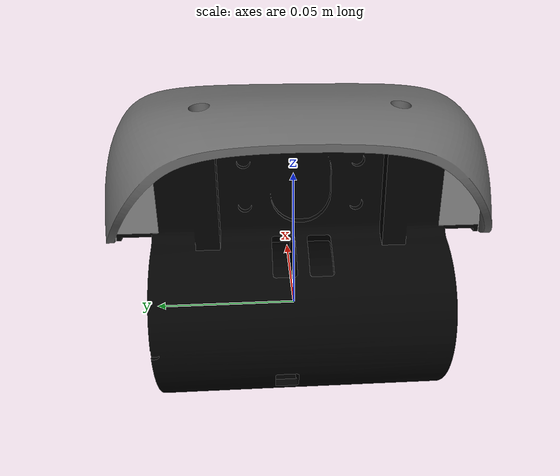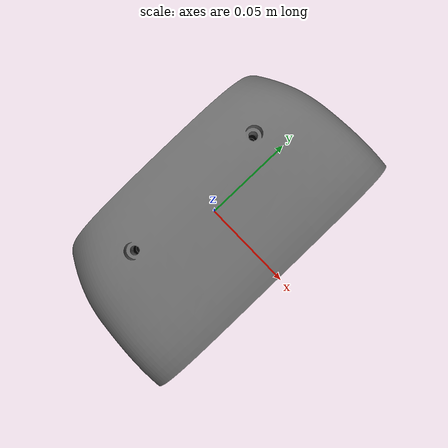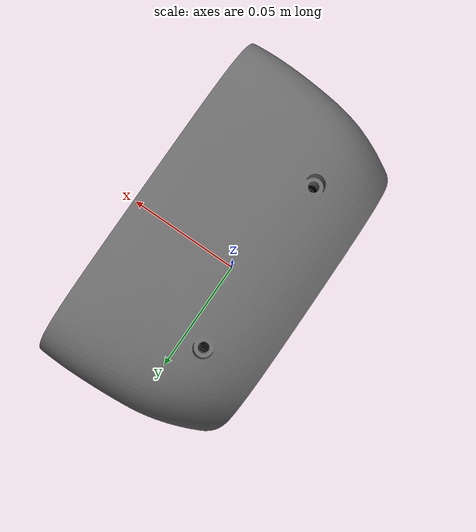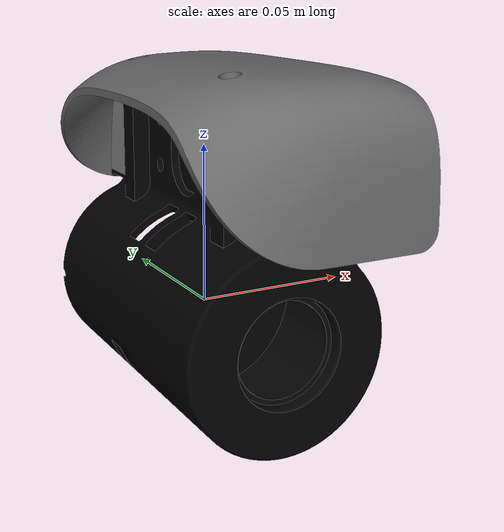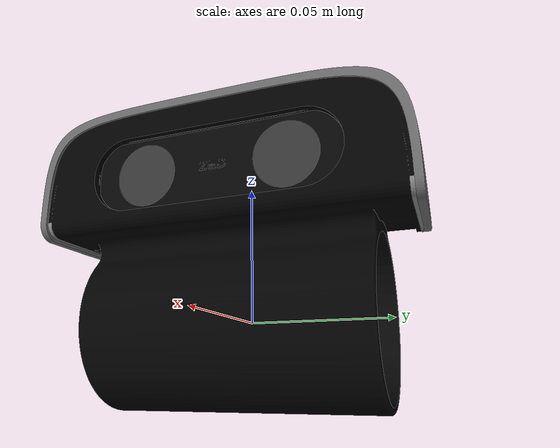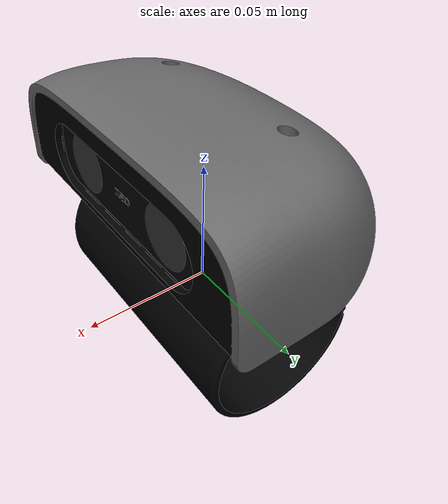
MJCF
<mujoco model="head_l3">
  <default>
    <default class="visual">
      <geom group="2" type="mesh" contype="0" conaffinity="0"/>
    </default>
    <default class="collision">
      <geom group="3" type="mesh"/>
    </default>
  </default>
  <asset>
    <material name="material_0" specular="0.4000000000000001" shininess="0.001" rgba="0.00000000 0.00000000 0.00000000 1.0"/>
    <material name="material_1" specular="0.4000000000000001" shininess="0.001" rgba="0.01568627 0.01568627 0.01568627 1.0"/>
    <material name="material_2" specular="0.4000000000000001" shininess="0.001" rgba="0.40000000 0.40000000 0.40000000 1.0"/>
    <material name="material_3" specular="0.4000000000000001" shininess="0.001" rgba="0.50196078 0.50196078 0.50196078 1.0"/>
    <material name="material_5" specular="0.4000000000000001" shininess="0.001" rgba="0.20000000 0.20000000 0.20000000 1.0"/>
    <mesh file="head_l3_0.obj"/>
    <mesh file="head_l3_2.obj"/>
    <mesh file="head_l3_3.obj"/>
    <mesh file="head_l3_4.obj"/>
    <mesh file="head_l3_5.obj"/>
  </asset>
  <worldbody>
    <body name="head_l3">
      <geom mesh="head_l3_0" material="material_5" class="visual"/>
      <geom mesh="head_l3_2" material="material_3" class="visual"/>
      <geom mesh="head_l3_3" material="material_2" class="visual"/>
      <geom mesh="head_l3_4" material="material_1" class="visual"/>
      <geom mesh="head_l3_5" material="material_0" class="visual"/>
    </body>
  </worldbody>
</mujoco>
